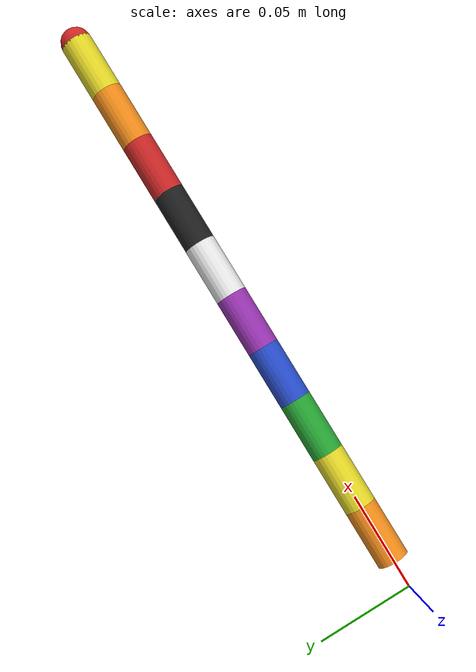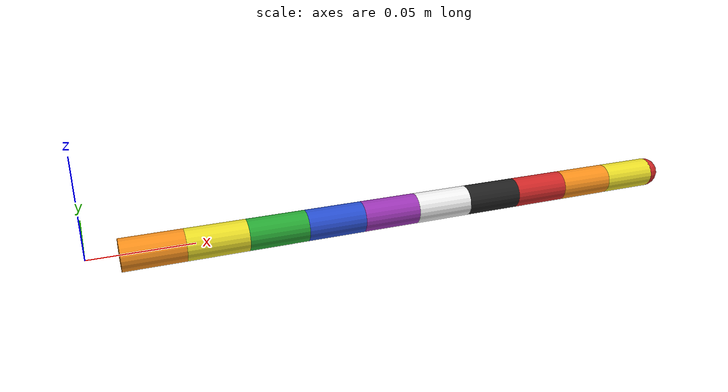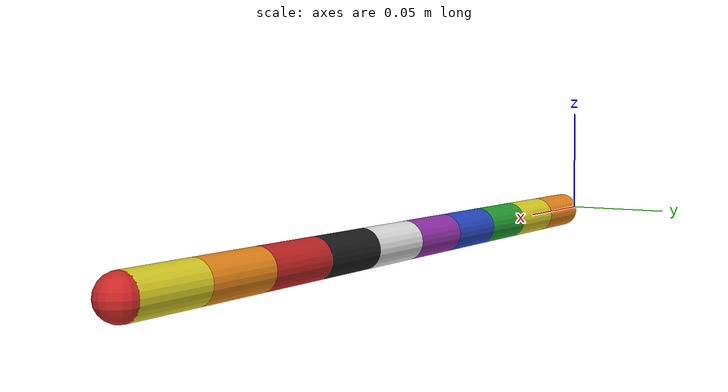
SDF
<sdf version="1.6">
    <model name="link_bot">
        <pose frame="">0 0 0 0 0 0</pose>

        <link name="link_1">
            <pose frame="">0.03 0 0 3.14159 -1.57079 3.14159</pose>
            <inertial>
                <pose frame="">0 0 0 0 0 0</pose>
                <mass>0.03
                </mass>
                <inertia>
                    <ixx>2.7299999999999997e-06
                    </ixx>
                    <ixy>0</ixy>
                    <ixz>0</ixz>
                    <iyy>2.7299999999999997e-06
                    </iyy>
                    <iyz>0</iyz>
                    <izz>9.600000000000001e-07
                    </izz>
                </inertia>
            </inertial>
            <collision name="link_1_collision">
                <pose frame="">0 0 0 0 0 0</pose>
                <geometry>
                    <cylinder>
                        <length>0.03</length>
                        <radius>0.008</radius>
                    </cylinder>
                </geometry>
                <surface>
                    <friction>
                        <ode>
                            <mu>0.20</mu>
                            <mu2>0.20</mu2>
                        </ode>
                    </friction>
                    <contact>
                        <ode>
                            <kp>1e15</kp>
                            <kd>1e13</kd>
                        </ode>
                    </contact>
                </surface>
            </collision>

            <collision name="link_1_collision_ball1">
                <pose frame="">0 0 0.015 0 0 0</pose>
                <geometry>
                    <sphere>
                        <radius>0.008</radius>
                    </sphere>
                </geometry>
                <surface>
                    <friction>
                        <ode>
                            <mu>0.20</mu>
                            <mu2>0.20</mu2>
                        </ode>
                    </friction>
                    <contact>
                        <ode>
                            <kp>1e15</kp>
                            <kd>1e13</kd>
                        </ode>
                    </contact>
                </surface>
            </collision>

            <collision name="link_1_collision_ball2">
                <pose frame="">0 0 -0.015 0 0 0</pose>
                <geometry>
                    <sphere>
                        <radius>0.008</radius>
                    </sphere>
                </geometry>
                <surface>
                    <friction>
                        <ode>
                            <mu>0.20</mu>
                            <mu2>0.20</mu2>
                        </ode>
                    </friction>
                    <contact>
                        <ode>
                            <kp>1e15</kp>
                            <kd>1e13</kd>
                        </ode>
                    </contact>
                </surface>
            </collision>

            <visual name="link_1_visual">
                <cast_shadows>0</cast_shadows>
                <pose frame="">0 0 0 0 0 0</pose>
                <geometry>
                    <cylinder>
                        <length>0.03
                        </length>
                        <radius>0.008
                        </radius>
                    </cylinder>
                </geometry>
                <material>
                    <script>
                        <name>Gazebo/Orange</name>
                        <uri>file://media/materials/scripts/gazebo.material</uri>
                    </script>
                </material>
            </visual>
            <self_collide>1</self_collide>
        </link>

        <link name="link_2">
            <pose frame="">0.06 0 0 3.14159 -1.57079 3.14159</pose>
            <inertial>
                <pose frame="">0 0 0 0 0 0</pose>
                <mass>0.03
                </mass>
                <inertia>
                    <ixx>2.7299999999999997e-06
                    </ixx>
                    <ixy>0</ixy>
                    <ixz>0</ixz>
                    <iyy>2.7299999999999997e-06
                    </iyy>
                    <iyz>0</iyz>
                    <izz>9.600000000000001e-07
                    </izz>
                </inertia>
            </inertial>
            <collision name="link_2_collision">
                <pose frame="">0 0 0 0 0 0</pose>
                <geometry>
                    <cylinder>
                        <length>0.03</length>
                        <radius>0.008</radius>
                    </cylinder>
                </geometry>
                <surface>
                    <friction>
                        <ode>
                            <mu>0.20</mu>
                            <mu2>0.20</mu2>
                        </ode>
                    </friction>
                    <contact>
                        <ode>
                            <kp>1e15</kp>
                            <kd>1e13</kd>
                        </ode>
                    </contact>
                </surface>
            </collision>

            <collision name="link_2_collision_ball1">
                <pose frame="">0 0 0.015 0 0 0</pose>
                <geometry>
                    <sphere>
                        <radius>0.008</radius>
                    </sphere>
                </geometry>
                <surface>
                    <friction>
                        <ode>
                            <mu>0.20</mu>
                            <mu2>0.20</mu2>
                        </ode>
                    </friction>
                    <contact>
                        <ode>
                            <kp>1e15</kp>
                            <kd>1e13</kd>
                        </ode>
                    </contact>
                </surface>
            </collision>

            <collision name="link_2_collision_ball2">
                <pose frame="">0 0 -0.015 0 0 0</pose>
                <geometry>
                    <sphere>
                        <radius>0.008</radius>
                    </sphere>
                </geometry>
                <surface>
                    <friction>
                        <ode>
                            <mu>0.20</mu>
                            <mu2>0.20</mu2>
                        </ode>
                    </friction>
                    <contact>
                        <ode>
                            <kp>1e15</kp>
                            <kd>1e13</kd>
                        </ode>
                    </contact>
                </surface>
            </collision>

            <visual name="link_2_visual">
                <cast_shadows>0</cast_shadows>
                <pose frame="">0 0 0 0 0 0</pose>
                <geometry>
                    <cylinder>
                        <length>0.03
                        </length>
                        <radius>0.008
                        </radius>
                    </cylinder>
                </geometry>
                <material>
                    <script>
                        <name>Gazebo/Yellow</name>
                        <uri>file://media/materials/scripts/gazebo.material</uri>
                    </script>
                </material>
            </visual>
            <self_collide>1</self_collide>
        </link>

        <link name="link_3">
            <pose frame="">0.09 0 0 3.14159 -1.57079 3.14159</pose>
            <inertial>
                <pose frame="">0 0 0 0 0 0</pose>
                <mass>0.03
                </mass>
                <inertia>
                    <ixx>2.7299999999999997e-06
                    </ixx>
                    <ixy>0</ixy>
                    <ixz>0</ixz>
                    <iyy>2.7299999999999997e-06
                    </iyy>
                    <iyz>0</iyz>
                    <izz>9.600000000000001e-07
                    </izz>
                </inertia>
            </inertial>
            <collision name="link_3_collision">
                <pose frame="">0 0 0 0 0 0</pose>
                <geometry>
                    <cylinder>
                        <length>0.03</length>
                        <radius>0.008</radius>
                    </cylinder>
                </geometry>
                <surface>
                    <friction>
                        <ode>
                            <mu>0.20</mu>
                            <mu2>0.20</mu2>
                        </ode>
                    </friction>
                    <contact>
                        <ode>
                            <kp>1e15</kp>
                            <kd>1e13</kd>
                        </ode>
                    </contact>
                </surface>
            </collision>

            <collision name="link_3_collision_ball1">
                <pose frame="">0 0 0.015 0 0 0</pose>
                <geometry>
                    <sphere>
                        <radius>0.008</radius>
                    </sphere>
                </geometry>
                <surface>
                    <friction>
                        <ode>
                            <mu>0.20</mu>
                            <mu2>0.20</mu2>
                        </ode>
                    </friction>
                    <contact>
                        <ode>
                            <kp>1e15</kp>
                            <kd>1e13</kd>
                        </ode>
                    </contact>
                </surface>
            </collision>

            <collision name="link_3_collision_ball2">
                <pose frame="">0 0 -0.015 0 0 0</pose>
                <geometry>
                    <sphere>
                        <radius>0.008</radius>
                    </sphere>
                </geometry>
                <surface>
                    <friction>
                        <ode>
                            <mu>0.20</mu>
                            <mu2>0.20</mu2>
                        </ode>
                    </friction>
                    <contact>
                        <ode>
                            <kp>1e15</kp>
                            <kd>1e13</kd>
                        </ode>
                    </contact>
                </surface>
            </collision>

            <visual name="link_3_visual">
                <cast_shadows>0</cast_shadows>
                <pose frame="">0 0 0 0 0 0</pose>
                <geometry>
                    <cylinder>
                        <length>0.03
                        </length>
                        <radius>0.008
                        </radius>
                    </cylinder>
                </geometry>
                <material>
                    <script>
                        <name>Gazebo/Green</name>
                        <uri>file://media/materials/scripts/gazebo.material</uri>
                    </script>
                </material>
            </visual>
            <self_collide>1</self_collide>
        </link>

        <link name="link_4">
            <pose frame="">0.12 0 0 3.14159 -1.57079 3.14159</pose>
            <inertial>
                <pose frame="">0 0 0 0 0 0</pose>
                <mass>0.03
                </mass>
                <inertia>
                    <ixx>2.7299999999999997e-06
                    </ixx>
                    <ixy>0</ixy>
                    <ixz>0</ixz>
                    <iyy>2.7299999999999997e-06
                    </iyy>
                    <iyz>0</iyz>
                    <izz>9.600000000000001e-07
                    </izz>
                </inertia>
            </inertial>
            <collision name="link_4_collision">
                <pose frame="">0 0 0 0 0 0</pose>
                <geometry>
                    <cylinder>
                        <length>0.03</length>
                        <radius>0.008</radius>
                    </cylinder>
                </geometry>
                <surface>
                    <friction>
                        <ode>
                            <mu>0.20</mu>
                            <mu2>0.20</mu2>
                        </ode>
                    </friction>
                    <contact>
                        <ode>
                            <kp>1e15</kp>
                            <kd>1e13</kd>
                        </ode>
                    </contact>
                </surface>
            </collision>

            <collision name="link_4_collision_ball1">
                <pose frame="">0 0 0.015 0 0 0</pose>
                <geometry>
                    <sphere>
                        <radius>0.008</radius>
                    </sphere>
                </geometry>
                <surface>
                    <friction>
                        <ode>
                            <mu>0.20</mu>
                            <mu2>0.20</mu2>
                        </ode>
                    </friction>
                    <contact>
                        <ode>
                            <kp>1e15</kp>
                            <kd>1e13</kd>
                        </ode>
                    </contact>
                </surface>
            </collision>

            <collision name="link_4_collision_ball2">
                <pose frame="">0 0 -0.015 0 0 0</pose>
                <geometry>
                    <sphere>
                        <radius>0.008</radius>
                    </sphere>
                </geometry>
                <surface>
                    <friction>
                        <ode>
                            <mu>0.20</mu>
                            <mu2>0.20</mu2>
                        </ode>
                    </friction>
                    <contact>
                        <ode>
                            <kp>1e15</kp>
                            <kd>1e13</kd>
                        </ode>
                    </contact>
                </surface>
            </collision>

            <visual name="link_4_visual">
                <cast_shadows>0</cast_shadows>
                <pose frame="">0 0 0 0 0 0</pose>
                <geometry>
                    <cylinder>
                        <length>0.03
                        </length>
                        <radius>0.008
                        </radius>
                    </cylinder>
                </geometry>
                <material>
                    <script>
                        <name>Gazebo/Blue</name>
                        <uri>file://media/materials/scripts/gazebo.material</uri>
                    </script>
                </material>
            </visual>
            <self_collide>1</self_collide>
        </link>

        <link name="link_5">
            <pose frame="">0.15 0 0 3.14159 -1.57079 3.14159</pose>
            <inertial>
                <pose frame="">0 0 0 0 0 0</pose>
                <mass>0.03
                </mass>
                <inertia>
                    <ixx>2.7299999999999997e-06
                    </ixx>
                    <ixy>0</ixy>
                    <ixz>0</ixz>
                    <iyy>2.7299999999999997e-06
                    </iyy>
                    <iyz>0</iyz>
                    <izz>9.600000000000001e-07
                    </izz>
                </inertia>
            </inertial>
            <collision name="link_5_collision">
                <pose frame="">0 0 0 0 0 0</pose>
                <geometry>
                    <cylinder>
                        <length>0.03</length>
                        <radius>0.008</radius>
                    </cylinder>
                </geometry>
                <surface>
                    <friction>
                        <ode>
                            <mu>0.20</mu>
                            <mu2>0.20</mu2>
                        </ode>
                    </friction>
                    <contact>
                        <ode>
                            <kp>1e15</kp>
                            <kd>1e13</kd>
                        </ode>
                    </contact>
                </surface>
            </collision>

            <collision name="link_5_collision_ball1">
                <pose frame="">0 0 0.015 0 0 0</pose>
                <geometry>
                    <sphere>
                        <radius>0.008</radius>
                    </sphere>
                </geometry>
                <surface>
                    <friction>
                        <ode>
                            <mu>0.20</mu>
                            <mu2>0.20</mu2>
                        </ode>
                    </friction>
                    <contact>
                        <ode>
                            <kp>1e15</kp>
                            <kd>1e13</kd>
                        </ode>
                    </contact>
                </surface>
            </collision>

            <collision name="link_5_collision_ball2">
                <pose frame="">0 0 -0.015 0 0 0</pose>
                <geometry>
                    <sphere>
                        <radius>0.008</radius>
                    </sphere>
                </geometry>
                <surface>
                    <friction>
                        <ode>
                            <mu>0.20</mu>
                            <mu2>0.20</mu2>
                        </ode>
                    </friction>
                    <contact>
                        <ode>
                            <kp>1e15</kp>
                            <kd>1e13</kd>
                        </ode>
                    </contact>
                </surface>
            </collision>

            <visual name="link_5_visual">
                <cast_shadows>0</cast_shadows>
                <pose frame="">0 0 0 0 0 0</pose>
                <geometry>
                    <cylinder>
                        <length>0.03
                        </length>
                        <radius>0.008
                        </radius>
                    </cylinder>
                </geometry>
                <material>
                    <script>
                        <name>Gazebo/Purple</name>
                        <uri>file://media/materials/scripts/gazebo.material</uri>
                    </script>
                </material>
            </visual>
            <self_collide>1</self_collide>
        </link>

        <link name="link_6">
            <pose frame="">0.18 0 0 3.14159 -1.57079 3.14159</pose>
            <inertial>
                <pose frame="">0 0 0 0 0 0</pose>
                <mass>0.03
                </mass>
                <inertia>
                    <ixx>2.7299999999999997e-06
                    </ixx>
                    <ixy>0</ixy>
                    <ixz>0</ixz>
                    <iyy>2.7299999999999997e-06
                    </iyy>
                    <iyz>0</iyz>
                    <izz>9.600000000000001e-07
                    </izz>
                </inertia>
            </inertial>
            <collision name="link_6_collision">
                <pose frame="">0 0 0 0 0 0</pose>
                <geometry>
                    <cylinder>
                        <length>0.03</length>
                        <radius>0.008</radius>
                    </cylinder>
                </geometry>
                <surface>
                    <friction>
                        <ode>
                            <mu>0.20</mu>
                            <mu2>0.20</mu2>
                        </ode>
                    </friction>
                    <contact>
                        <ode>
                            <kp>1e15</kp>
                            <kd>1e13</kd>
                        </ode>
                    </contact>
                </surface>
            </collision>

            <collision name="link_6_collision_ball1">
                <pose frame="">0 0 0.015 0 0 0</pose>
                <geometry>
                    <sphere>
                        <radius>0.008</radius>
                    </sphere>
                </geometry>
                <surface>
                    <friction>
                        <ode>
                            <mu>0.20</mu>
                            <mu2>0.20</mu2>
                        </ode>
                    </friction>
                    <contact>
                        <ode>
                            <kp>1e15</kp>
                            <kd>1e13</kd>
                        </ode>
                    </contact>
                </surface>
            </collision>

            <collision name="link_6_collision_ball2">
                <pose frame="">0 0 -0.015 0 0 0</pose>
                <geometry>
                    <sphere>
                        <radius>0.008</radius>
                    </sphere>
                </geometry>
                <surface>
                    <friction>
                        <ode>
                            <mu>0.20</mu>
                            <mu2>0.20</mu2>
                        </ode>
                    </friction>
                    <contact>
                        <ode>
                            <kp>1e15</kp>
                            <kd>1e13</kd>
                        </ode>
                    </contact>
                </surface>
            </collision>

            <visual name="link_6_visual">
                <cast_shadows>0</cast_shadows>
                <pose frame="">0 0 0 0 0 0</pose>
                <geometry>
                    <cylinder>
                        <length>0.03
                        </length>
                        <radius>0.008
                        </radius>
                    </cylinder>
                </geometry>
                <material>
                    <script>
                        <name>Gazebo/White</name>
                        <uri>file://media/materials/scripts/gazebo.material</uri>
                    </script>
                </material>
            </visual>
            <self_collide>1</self_collide>
        </link>

        <link name="link_7">
            <pose frame="">0.21 0 0 3.14159 -1.57079 3.14159</pose>
            <inertial>
                <pose frame="">0 0 0 0 0 0</pose>
                <mass>0.03
                </mass>
                <inertia>
                    <ixx>2.7299999999999997e-06
                    </ixx>
                    <ixy>0</ixy>
                    <ixz>0</ixz>
                    <iyy>2.7299999999999997e-06
                    </iyy>
                    <iyz>0</iyz>
                    <izz>9.600000000000001e-07
                    </izz>
                </inertia>
            </inertial>
            <collision name="link_7_collision">
                <pose frame="">0 0 0 0 0 0</pose>
                <geometry>
                    <cylinder>
                        <length>0.03</length>
                        <radius>0.008</radius>
                    </cylinder>
                </geometry>
                <surface>
                    <friction>
                        <ode>
                            <mu>0.20</mu>
                            <mu2>0.20</mu2>
                        </ode>
                    </friction>
                    <contact>
                        <ode>
                            <kp>1e15</kp>
                            <kd>1e13</kd>
                        </ode>
                    </contact>
                </surface>
            </collision>

            <collision name="link_7_collision_ball1">
                <pose frame="">0 0 0.015 0 0 0</pose>
                <geometry>
                    <sphere>
                        <radius>0.008</radius>
                    </sphere>
                </geometry>
                <surface>
                    <friction>
                        <ode>
                            <mu>0.20</mu>
                            <mu2>0.20</mu2>
                        </ode>
                    </friction>
                    <contact>
                        <ode>
                            <kp>1e15</kp>
                            <kd>1e13</kd>
                        </ode>
                    </contact>
                </surface>
            </collision>

            <collision name="link_7_collision_ball2">
                <pose frame="">0 0 -0.015 0 0 0</pose>
                <geometry>
                    <sphere>
                        <radius>0.008</radius>
                    </sphere>
                </geometry>
                <surface>
                    <friction>
                        <ode>
                            <mu>0.20</mu>
                            <mu2>0.20</mu2>
                        </ode>
                    </friction>
                    <contact>
                        <ode>
                            <kp>1e15</kp>
                            <kd>1e13</kd>
                        </ode>
                    </contact>
                </surface>
            </collision>

            <visual name="link_7_visual">
                <cast_shadows>0</cast_shadows>
                <pose frame="">0 0 0 0 0 0</pose>
                <geometry>
                    <cylinder>
                        <length>0.03
                        </length>
                        <radius>0.008
                        </radius>
                    </cylinder>
                </geometry>
                <material>
                    <script>
                        <name>Gazebo/Black</name>
                        <uri>file://media/materials/scripts/gazebo.material</uri>
                    </script>
                </material>
            </visual>
            <self_collide>1</self_collide>
        </link>

        <link name="link_8">
            <pose frame="">0.24 0 0 3.14159 -1.57079 3.14159</pose>
            <inertial>
                <pose frame="">0 0 0 0 0 0</pose>
                <mass>0.03
                </mass>
                <inertia>
                    <ixx>2.7299999999999997e-06
                    </ixx>
                    <ixy>0</ixy>
                    <ixz>0</ixz>
                    <iyy>2.7299999999999997e-06
                    </iyy>
                    <iyz>0</iyz>
                    <izz>9.600000000000001e-07
                    </izz>
                </inertia>
            </inertial>
            <collision name="link_8_collision">
                <pose frame="">0 0 0 0 0 0</pose>
                <geometry>
                    <cylinder>
                        <length>0.03</length>
                        <radius>0.008</radius>
                    </cylinder>
                </geometry>
                <surface>
                    <friction>
                        <ode>
                            <mu>0.20</mu>
                            <mu2>0.20</mu2>
                        </ode>
                    </friction>
                    <contact>
                        <ode>
                            <kp>1e15</kp>
                            <kd>1e13</kd>
                        </ode>
                    </contact>
                </surface>
            </collision>

            <collision name="link_8_collision_ball1">
                <pose frame="">0 0 0.015 0 0 0</pose>
                <geometry>
                    <sphere>
                        <radius>0.008</radius>
                    </sphere>
                </geometry>
                <surface>
                    <friction>
                        <ode>
                            <mu>0.20</mu>
                            <mu2>0.20</mu2>
                        </ode>
                    </friction>
                    <contact>
                        <ode>
                            <kp>1e15</kp>
                            <kd>1e13</kd>
                        </ode>
                    </contact>
                </surface>
            </collision>

            <collision name="link_8_collision_ball2">
                <pose frame="">0 0 -0.015 0 0 0</pose>
                <geometry>
                    <sphere>
                        <radius>0.008</radius>
                    </sphere>
                </geometry>
                <surface>
                    <friction>
                        <ode>
                            <mu>0.20</mu>
                            <mu2>0.20</mu2>
                        </ode>
                    </friction>
                    <contact>
                        <ode>
                            <kp>1e15</kp>
                            <kd>1e13</kd>
                        </ode>
                    </contact>
                </surface>
            </collision>

            <visual name="link_8_visual">
                <cast_shadows>0</cast_shadows>
                <pose frame="">0 0 0 0 0 0</pose>
                <geometry>
                    <cylinder>
                        <length>0.03
                        </length>
                        <radius>0.008
                        </radius>
                    </cylinder>
                </geometry>
                <material>
                    <script>
                        <name>Gazebo/Red</name>
                        <uri>file://media/materials/scripts/gazebo.material</uri>
                    </script>
                </material>
            </visual>
            <self_collide>1</self_collide>
        </link>

        <link name="link_9">
            <pose frame="">0.27 0 0 3.14159 -1.57079 3.14159</pose>
            <inertial>
                <pose frame="">0 0 0 0 0 0</pose>
                <mass>0.03
                </mass>
                <inertia>
                    <ixx>2.7299999999999997e-06
                    </ixx>
                    <ixy>0</ixy>
                    <ixz>0</ixz>
                    <iyy>2.7299999999999997e-06
                    </iyy>
                    <iyz>0</iyz>
                    <izz>9.600000000000001e-07
                    </izz>
                </inertia>
            </inertial>
            <collision name="link_9_collision">
                <pose frame="">0 0 0 0 0 0</pose>
                <geometry>
                    <cylinder>
                        <length>0.03</length>
                        <radius>0.008</radius>
                    </cylinder>
                </geometry>
                <surface>
                    <friction>
                        <ode>
                            <mu>0.20</mu>
                            <mu2>0.20</mu2>
                        </ode>
                    </friction>
                    <contact>
                        <ode>
                            <kp>1e15</kp>
                            <kd>1e13</kd>
                        </ode>
                    </contact>
                </surface>
            </collision>

            <collision name="link_9_collision_ball1">
                <pose frame="">0 0 0.015 0 0 0</pose>
                <geometry>
                    <sphere>
                        <radius>0.008</radius>
                    </sphere>
                </geometry>
                <surface>
                    <friction>
                        <ode>
                            <mu>0.20</mu>
                            <mu2>0.20</mu2>
                        </ode>
                    </friction>
                    <contact>
                        <ode>
                            <kp>1e15</kp>
                            <kd>1e13</kd>
                        </ode>
                    </contact>
                </surface>
            </collision>

            <collision name="link_9_collision_ball2">
                <pose frame="">0 0 -0.015 0 0 0</pose>
                <geometry>
                    <sphere>
                        <radius>0.008</radius>
                    </sphere>
                </geometry>
                <surface>
                    <friction>
                        <ode>
                            <mu>0.20</mu>
                            <mu2>0.20</mu2>
                        </ode>
                    </friction>
                    <contact>
                        <ode>
                            <kp>1e15</kp>
                            <kd>1e13</kd>
                        </ode>
                    </contact>
                </surface>
            </collision>

            <visual name="link_9_visual">
                <cast_shadows>0</cast_shadows>
                <pose frame="">0 0 0 0 0 0</pose>
                <geometry>
                    <cylinder>
                        <length>0.03
                        </length>
                        <radius>0.008
                        </radius>
                    </cylinder>
                </geometry>
                <material>
                    <script>
                        <name>Gazebo/Orange</name>
                        <uri>file://media/materials/scripts/gazebo.material</uri>
                    </script>
                </material>
            </visual>
            <self_collide>1</self_collide>
        </link>

        <link name="link_10">
            <pose frame="">0.3 0 0 3.14159 -1.57079 3.14159</pose>
            <inertial>
                <pose frame="">0 0 0 0 0 0</pose>
                <mass>0.03
                </mass>
                <inertia>
                    <ixx>2.7299999999999997e-06
                    </ixx>
                    <ixy>0</ixy>
                    <ixz>0</ixz>
                    <iyy>2.7299999999999997e-06
                    </iyy>
                    <iyz>0</iyz>
                    <izz>9.600000000000001e-07
                    </izz>
                </inertia>
            </inertial>
            <collision name="link_10_collision">
                <pose frame="">0 0 0 0 0 0</pose>
                <geometry>
                    <cylinder>
                        <length>0.03</length>
                        <radius>0.008</radius>
                    </cylinder>
                </geometry>
                <surface>
                    <friction>
                        <ode>
                            <mu>0.20</mu>
                            <mu2>0.20</mu2>
                        </ode>
                    </friction>
                    <contact>
                        <ode>
                            <kp>1e15</kp>
                            <kd>1e13</kd>
                        </ode>
                    </contact>
                </surface>
            </collision>

            <collision name="link_10_collision_ball1">
                <pose frame="">0 0 0.015 0 0 0</pose>
                <geometry>
                    <sphere>
                        <radius>0.008</radius>
                    </sphere>
                </geometry>
                <surface>
                    <friction>
                        <ode>
                            <mu>0.20</mu>
                            <mu2>0.20</mu2>
                        </ode>
                    </friction>
                    <contact>
                        <ode>
                            <kp>1e15</kp>
                            <kd>1e13</kd>
                        </ode>
                    </contact>
                </surface>
            </collision>

            <collision name="link_10_collision_ball2">
                <pose frame="">0 0 -0.015 0 0 0</pose>
                <geometry>
                    <sphere>
                        <radius>0.008</radius>
                    </sphere>
                </geometry>
                <surface>
                    <friction>
                        <ode>
                            <mu>0.20</mu>
                            <mu2>0.20</mu2>
                        </ode>
                    </friction>
                    <contact>
                        <ode>
                            <kp>1e15</kp>
                            <kd>1e13</kd>
                        </ode>
                    </contact>
                </surface>
            </collision>

            <visual name="link_10_visual">
                <cast_shadows>0</cast_shadows>
                <pose frame="">0 0 0 0 0 0</pose>
                <geometry>
                    <cylinder>
                        <length>0.03
                        </length>
                        <radius>0.008
                        </radius>
                    </cylinder>
                </geometry>
                <material>
                    <script>
                        <name>Gazebo/Yellow</name>
                        <uri>file://media/materials/scripts/gazebo.material</uri>
                    </script>
                </material>
            </visual>
            <self_collide>1</self_collide>
        </link>

        <joint name="joint_1" type="universal">
            <child>link_2</child>
            <parent>link_1</parent>
            <pose>0 0 0.015 0 0 0</pose>
            <axis>
                <xyz>0 0 1</xyz>
                <limit>
                    <lower>-2.0</lower>
                    <upper>2.0</upper>
                </limit>
                <dynamics>
                    <damping>0.001</damping>
                    <friction>0.002</friction>
                </dynamics>
                <use_parent_model_frame>1</use_parent_model_frame>
            </axis>
            <axis2>
                <xyz>0 1 0</xyz>
                <limit>
                    <lower>-2.0</lower>
                    <upper>2.0</upper>
                </limit>
                <dynamics>
                    <damping>0.001</damping>
                    <friction>0.002</friction>
                </dynamics>
                <use_parent_model_frame>1</use_parent_model_frame>
            </axis2>
            <physics>
                <ode>
                </ode>
            </physics>
        </joint>

        <joint name="joint_2" type="universal">
            <child>link_3</child>
            <parent>link_2</parent>
            <pose>0 0 0.015 0 0 0</pose>
            <axis>
                <xyz>0 0 1</xyz>
                <limit>
                    <lower>-2.0</lower>
                    <upper>2.0</upper>
                </limit>
                <dynamics>
                    <damping>0.001</damping>
                    <friction>0.002</friction>
                </dynamics>
                <use_parent_model_frame>1</use_parent_model_frame>
            </axis>
            <axis2>
                <xyz>0 1 0</xyz>
                <limit>
                    <lower>-2.0</lower>
                    <upper>2.0</upper>
                </limit>
                <dynamics>
                    <damping>0.001</damping>
                    <friction>0.002</friction>
                </dynamics>
                <use_parent_model_frame>1</use_parent_model_frame>
            </axis2>
            <physics>
                <ode>
                </ode>
            </physics>
        </joint>

        <joint name="joint_3" type="universal">
            <child>link_4</child>
            <parent>link_3</parent>
            <pose>0 0 0.015 0 0 0</pose>
            <axis>
                <xyz>0 0 1</xyz>
                <limit>
                    <lower>-2.0</lower>
                    <upper>2.0</upper>
                </limit>
                <dynamics>
                    <damping>0.001</damping>
                    <friction>0.002</friction>
                </dynamics>
                <use_parent_model_frame>1</use_parent_model_frame>
            </axis>
            <axis2>
                <xyz>0 1 0</xyz>
                <limit>
                    <lower>-2.0</lower>
                    <upper>2.0</upper>
                </limit>
                <dynamics>
                    <damping>0.001</damping>
                    <friction>0.002</friction>
                </dynamics>
                <use_parent_model_frame>1</use_parent_model_frame>
            </axis2>
            <physics>
                <ode>
                </ode>
            </physics>
        </joint>

        <joint name="joint_4" type="universal">
            <child>link_5</child>
            <parent>link_4</parent>
            <pose>0 0 0.015 0 0 0</pose>
            <axis>
                <xyz>0 0 1</xyz>
                <limit>
                    <lower>-2.0</lower>
                    <upper>2.0</upper>
                </limit>
                <dynamics>
                    <damping>0.001</damping>
                    <friction>0.002</friction>
                </dynamics>
                <use_parent_model_frame>1</use_parent_model_frame>
            </axis>
            <axis2>
                <xyz>0 1 0</xyz>
                <limit>
                    <lower>-2.0</lower>
                    <upper>2.0</upper>
                </limit>
                <dynamics>
                    <damping>0.001</damping>
                    <friction>0.002</friction>
                </dynamics>
                <use_parent_model_frame>1</use_parent_model_frame>
            </axis2>
            <physics>
                <ode>
                </ode>
            </physics>
        </joint>

        <joint name="joint_5" type="universal">
            <child>link_6</child>
            <parent>link_5</parent>
            <pose>0 0 0.015 0 0 0</pose>
            <axis>
                <xyz>0 0 1</xyz>
                <limit>
                    <lower>-2.0</lower>
                    <upper>2.0</upper>
                </limit>
                <dynamics>
                    <damping>0.001</damping>
                    <friction>0.002</friction>
                </dynamics>
                <use_parent_model_frame>1</use_parent_model_frame>
            </axis>
            <axis2>
                <xyz>0 1 0</xyz>
                <limit>
                    <lower>-2.0</lower>
                    <upper>2.0</upper>
                </limit>
                <dynamics>
                    <damping>0.001</damping>
                    <friction>0.002</friction>
                </dynamics>
                <use_parent_model_frame>1</use_parent_model_frame>
            </axis2>
            <physics>
                <ode>
                </ode>
            </physics>
        </joint>

        <joint name="joint_6" type="universal">
            <child>link_7</child>
            <parent>link_6</parent>
            <pose>0 0 0.015 0 0 0</pose>
            <axis>
                <xyz>0 0 1</xyz>
                <limit>
                    <lower>-2.0</lower>
                    <upper>2.0</upper>
                </limit>
                <dynamics>
                    <damping>0.001</damping>
                    <friction>0.002</friction>
                </dynamics>
                <use_parent_model_frame>1</use_parent_model_frame>
            </axis>
            <axis2>
                <xyz>0 1 0</xyz>
                <limit>
                    <lower>-2.0</lower>
                    <upper>2.0</upper>
                </limit>
                <dynamics>
                    <damping>0.001</damping>
                    <friction>0.002</friction>
                </dynamics>
                <use_parent_model_frame>1</use_parent_model_frame>
            </axis2>
            <physics>
                <ode>
                </ode>
            </physics>
        </joint>

        <joint name="joint_7" type="universal">
            <child>link_8</child>
            <parent>link_7</parent>
            <pose>0 0 0.015 0 0 0</pose>
            <axis>
                <xyz>0 0 1</xyz>
                <limit>
                    <lower>-2.0</lower>
                    <upper>2.0</upper>
                </limit>
                <dynamics>
                    <damping>0.001</damping>
                    <friction>0.002</friction>
                </dynamics>
                <use_parent_model_frame>1</use_parent_model_frame>
            </axis>
            <axis2>
                <xyz>0 1 0</xyz>
                <limit>
                    <lower>-2.0</lower>
                    <upper>2.0</upper>
                </limit>
                <dynamics>
                    <damping>0.001</damping>
                    <friction>0.002</friction>
                </dynamics>
                <use_parent_model_frame>1</use_parent_model_frame>
            </axis2>
            <physics>
                <ode>
                </ode>
            </physics>
        </joint>

        <joint name="joint_8" type="universal">
            <child>link_9</child>
            <parent>link_8</parent>
            <pose>0 0 0.015 0 0 0</pose>
            <axis>
                <xyz>0 0 1</xyz>
                <limit>
                    <lower>-2.0</lower>
                    <upper>2.0</upper>
                </limit>
                <dynamics>
                    <damping>0.001</damping>
                    <friction>0.002</friction>
                </dynamics>
                <use_parent_model_frame>1</use_parent_model_frame>
            </axis>
            <axis2>
                <xyz>0 1 0</xyz>
                <limit>
                    <lower>-2.0</lower>
                    <upper>2.0</upper>
                </limit>
                <dynamics>
                    <damping>0.001</damping>
                    <friction>0.002</friction>
                </dynamics>
                <use_parent_model_frame>1</use_parent_model_frame>
            </axis2>
            <physics>
                <ode>
                </ode>
            </physics>
        </joint>

        <joint name="joint_9" type="universal">
            <child>link_10</child>
            <parent>link_9</parent>
            <pose>0 0 0.015 0 0 0</pose>
            <axis>
                <xyz>0 0 1</xyz>
                <limit>
                    <lower>-2.0</lower>
                    <upper>2.0</upper>
                </limit>
                <dynamics>
                    <damping>0.001</damping>
                    <friction>0.002</friction>
                </dynamics>
                <use_parent_model_frame>1</use_parent_model_frame>
            </axis>
            <axis2>
                <xyz>0 1 0</xyz>
                <limit>
                    <lower>-2.0</lower>
                    <upper>2.0</upper>
                </limit>
                <dynamics>
                    <damping>0.001</damping>
                    <friction>0.002</friction>
                </dynamics>
                <use_parent_model_frame>1</use_parent_model_frame>
            </axis2>
            <physics>
                <ode>
                </ode>
            </physics>
        </joint>

        <link name='head'>
            <kinematic>1</kinematic>
            <pose frame=''>0.315 0 0 0 0 0</pose>
            <inertial>
                <pose frame=''>0 0 0 0 0 0</pose>
                <mass>0.1</mass>
                <inertia>
                    <ixx>0.0001</ixx>
                    <ixy>0</ixy>
                    <ixz>0</ixz>
                    <iyy>0.0001</iyy>
                    <iyz>0</iyz>
                    <izz>0.001</izz>
                </inertia>
            </inertial>
            <collision name='head_collision'>
                <pose frame=''>0 0 0 0 0 0</pose>
                <geometry>
                    <sphere>
                        <radius>0.008</radius>
                    </sphere>
                </geometry>
                <surface>
                    <friction>
                        <ode>
                            <mu>0.0</mu>
                            <mu2>0.0</mu2>
                        </ode>
                    </friction>
                    <contact>
                        <ode>
                        </ode>
                    </contact>
                </surface>
            </collision>
            <visual name='head_visual'>
                <cast_shadows>0</cast_shadows>
                <pose frame=''>0 0 0 0 0 0</pose>
                <geometry>
                    <sphere>
                        <radius>0.008
                        </radius>
                    </sphere>
                </geometry>
                <material>
                    <script>
                        <name>Gazebo/Red</name>
                        <uri>file://media/materials/scripts/gazebo.material</uri>
                    </script>
                </material>
            </visual>
            <self_collide>1</self_collide>
        </link>
        <joint name="head_joint" type="universal">
            <child>head</child>
            <parent>link_10</parent>
            <pose>0 0 0 0 0 0</pose>
            <axis>
                <xyz>0 0 1</xyz>
                <dynamics>
                    <damping>0.001</damping>
                    <friction>0.002</friction>
                </dynamics>
            </axis>
            <axis2>
                <xyz>0 1 0</xyz>
                <dynamics>
                    <damping>0.001</damping>
                    <friction>0.002</friction>
                </dynamics>
            </axis2>
        </joint>
        <plugin name='rope_plugin' filename='librope_plugin.so'>
            <num_links>10</num_links>
            <rope_length>0.3</rope_length>
        </plugin>
    </model>
</sdf>
